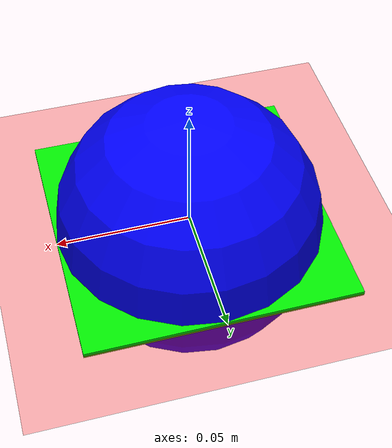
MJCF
<?xml version="1.0" ?>
<mujoco>
    <compiler inertiafromgeom='auto' coordinate="global"/>

    <worldbody>
        <light diffuse=".5 .5 .5" pos="0 0 3" dir="0 0 -1"/>
        <camera name="camera1" pos="0 0 1.3"/>
        <geom type="plane" size="0.5 0.5 0.1" rgba=".9 0 0 1"/>
        <body pos="0 0 0">
            <joint axis="1 0 0" damping="0.1" name="slide0" pos="0 0 0" type="slide"/>
            <joint axis="0 1 0" damping="0.1" name="slide1" pos="0 0 0" type="slide"/>

            <geom mass="2000000000" type="box" size=".05 .05 .001" rgba="0 .9 0 1"/>
        </body>
        <body name="robot" pos="0 0 0">
            <joint axis="1 0 0" damping="0.1" name="slide2" pos="0 0 0" type="slide"/>
            <joint axis="0 1 0" damping="0.1" name="slide3" pos="0 0 0" type="slide"/>
            <joint axis="0 0 1" damping="1" name="slide4" pos="0 0 0" type="slide"/>
            <geom mass="1.0" pos="0 0 0" rgba="0 0 1 1" size="0.05" type="sphere"/>
        </body>
    </worldbody>

    <actuator>
        <motor gear="50.0" joint="slide2"/>
        <motor gear="50.0" joint="slide3"/>
    </actuator>

</mujoco>
